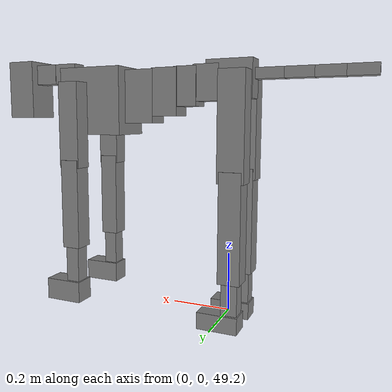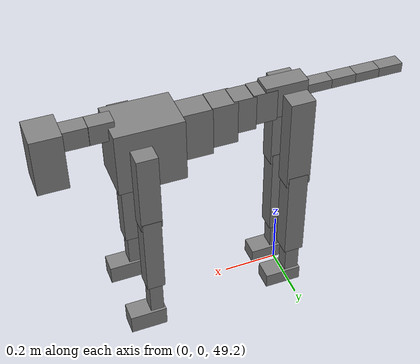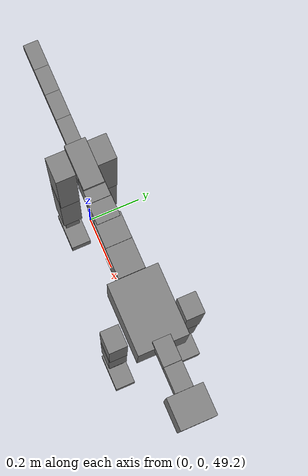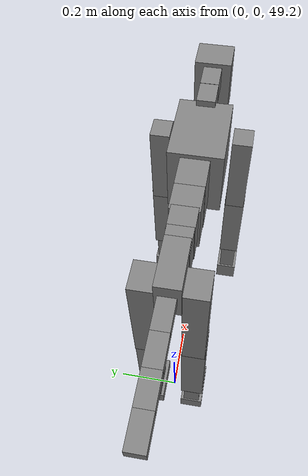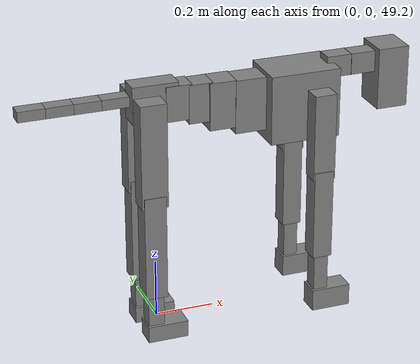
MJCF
<mujoco model="dog">

    <default>
        <joint armature="0.02" stiffness="1" damping="0.2" limited="true" />
        <geom condim="3" friction="1 0.05 0.05" margin="0.01" />
        <motor ctrllimited="true" ctrlrange="-1.0 1.0" forcelimited="true" gear="50" />
    </default>

    <compiler inertiafromgeom="true" angle="radian" />

    <option timestep="0.016" iterations="50" tolerance="1e-10" solver="Newton" jacobian="dense" cone="pyramidal" />

    <size nconmax="20000" njmax="60000" nstack="5000000" />
    <visual>
        <map force="0.1" zfar="30" />
        <rgba haze="0.15 0.25 0.35 1" />
        <quality shadowsize="2048" />
        <global offwidth="800" offheight="800" />
    </visual>

    <asset>
        <texture type="skybox" builtin="gradient" rgb1="0.3 0.5 0.7" rgb2="0 0 0" width="512" height="512" />
        <texture name="texplane" type="2d" builtin="checker" rgb1=".2 .3 .4" rgb2=".1 0.15 0.2" width="512" height="512" mark="cross" markrgb=".8 .8 .8" />
        <texture name="texgeom" type="cube" builtin="flat" mark="cross" width="127" height="1278" rgb1="0.8 0.6 0.4" rgb2="0.8 0.6 0.4" markrgb="1 1 1" random="0.01" />

        <material name="matplane" reflectance="0.3" texture="texplane" texrepeat="1 1" texuniform="true" />
        <material name="matgeom" texture="texgeom" texuniform="true" rgba="0.8 0.6 .4 1" />
    </asset>

    <worldbody>
        <geom name="floor" pos="0 0 0" size="0 0 .25" type="plane" material="matplane" condim="3" />

        <light directional="false" diffuse=".2 .2 .2" specular="0 0 0" pos="0 0 5" dir="0 0 -1" castshadow="false" />
        <light mode="targetbodycom" target="torso" directional="false" diffuse=".8 .8 .8" specular="0.3 0.3 0.3" pos="0 0 4.0" dir="0 0 -1" />

        <body name="root" pos="0 0 50">
            <freejoint name="root_1" />
            <geom type="box" pos="0 0 -0.02" size="0.0774  0.0358  0.063" density="2030" />

            <body name="spine1" pos="0.054 0 0">
                <joint name="spine1_y" axis="0 1 0" range="0 0.7" limited="true" />
                <geom type="box" pos="0.02375 0 -0.03" size="0.04375  0.0375  0.05985" density="2030" />

                <body name="spine2" pos="0.0612 0 0">
                    <joint name="spine2_y" axis="0 1 0" range="-0.15 0.15" limited="true" />
                    <geom type="box" pos="0.03555  0  -0.04" size="0.04055  0.039  0.06615" density="2030" />

                    <body name="spine3" pos="0.0730 0 0">
                        <joint name="spine3_y" axis="0 1 0" range="-0.15 0.15" limited="true" />
                        <geom type="box" pos="0.03555  0  -0.057" size="0.04555  0.0445  0.081" density="2030" />

                        <body name="spine4" pos="0.0780 0 0">
                            <joint name="spine4_y" axis="0 1 0" range="-0.15 0.15" limited="true" />
                            <geom type="box" pos="0.05265  0  -0.07" size="0.05265  0.045  0.09135" density="2030" />

                            <body name="torso" pos="0.1082 0 0">
                                <joint name="torso_y" axis="0 1 0" range="-0.15 0.15" limited="true" />
                                <geom type="box" pos="0.11925  0  -0.085" size="0.11925  0.085  0.11745" density="2030" />

                                <body name="neck1" pos="0.2160  0   0.0180">
                                    <joint name="neck1_y" axis="0 1 0" range="-1.2  -1" limited="true" />
                                    <geom type="box" pos="0.0423  0  0" size="0.0423  0.03  0.036" density="2325" />

                                    <body name="neck2" pos="0.0853  0  0">
                                        <joint name="neck2_y" axis="0 1 0" range="0.1  0" limited="true" />
                                        <geom type="box" pos="0.0423  0  0" size="0.0423  0.03  0.036" density="2325" />

                                        <body name="head" pos="0.0853  0  0">
                                            <joint name="head_y" axis="0 1 0" range="-0.3  -0.2" limited="true" />
                                            <geom type="box" pos="0.0531  0  -0.055" size="0.0531  0.06  0.1044" density="4030" />

                                        </body>
                                    </body>
                                </body>

                                <body name="front_shoulder" pos="0.156  0   -0.0480">
                                    <joint name="front_shoulder_y" axis="0 1 0" range="-1 1.5" limited="true" />
                                    <geom type="box" pos="0 0.13 -0.1210" size="0.0370  0.0316  0.1476" density="1158" />
                                    <geom type="box" pos="0 -0.13 -0.1210" size="0.0370  0.0316  0.1476" density="1158" />

                                    <body name="front_elbow" pos="0  0  -0.2419">
                                        <joint name="front_elbow_y" axis="0 1 0" range="-2 0" limited="true" />
                                        <geom type="box" pos="0 0.13 -0.1547" size="0.0327  0.0334  0.1547" density="1081" />
                                        <geom type="box" pos="0 -0.13 -0.1547" size="0.0327  0.0334  0.1547" density="1081" />

                                        <body name="front_wrist" pos="0  0  -0.3094">
                                            <joint name="front_wrist_y" axis="0 1 0" range="-0.2 0" limited="true" />
                                            <geom type="box" pos="0 0.13 -0.0692" size="0.0242  0.0269  0.0824" density="1664" />
                                            <geom type="box" pos="0 -0.13 -0.0692" size="0.0242  0.0269  0.0824" density="1664" />

                                            <body name="front_finger_end" pos="0  0  -0.1385">
                                                <joint name="front_finger_y" axis="0 1 0" range="-0.4 1" limited="true" />
                                                <geom type="box" pos="0.0364  0.13  -0.0222" size="0.0667  0.0364  0.0372" density="1515" />
                                                <geom type="box" pos="0.0364  -0.13  -0.0222" size="0.0667  0.0364  0.0372" density="1515" />

                                            </body>

                                        </body>
                                    </body>
                                </body>

                            </body>
                        </body>
                    </body>
                </body>
            </body>

            <body name="back_hip" pos="-0.03 0 -0.018">
                <joint name="back_hip_y" axis="0 1 0" range="-1.5 0.3" limited="true" />
                <geom type="box" pos="0 0.07 -0.1554" size="0.0442  0.0347  0.1782" density="1154" />
                <geom type="box" pos="0 -0.07 -0.1554" size="0.0442  0.0347  0.1782" density="1154" />

                <body name="back_knee" pos="0  0  -0.3107">
                    <joint name="back_knee_y" axis="0 1 0" range="0 2.8" limited="true" />
                    <geom type="box" pos="0 0.07 -0.1663" size="0.0369  0.0364  0.1818" density="1227" />
                    <geom type="box" pos="0 -0.07 -0.1663" size="0.0369  0.0364  0.1818" density="1227" />

                    <body name="back_ankle" pos="0  0  -0.3325">
                        <joint name="back_ankle_y" axis="0 1 0" range="-2.2 0" limited="true" />
                        <geom type="box" pos="0 0.07 -0.0681" size="0.0271  0.0271  0.0794" density="1284" />
                        <geom type="box" pos="0 -0.07 -0.0681" size="0.0271  0.0271  0.0794" density="1284" />

                        <body name="back_toe_end" pos="0  0  -0.1363">
                            <joint name="back_toe_y" axis="0 1 0" range="-0.4 1" limited="true" />
                            <geom type="box" pos="0.0375  0.07  -0.0135" size="0.0687  0.0375  0.0285" density="1515" />
                            <geom type="box" pos="0.0375  -0.07  -0.0135" size="0.0687  0.0375  0.0285" density="1515" />

                        </body>
                    </body>
                </body>
            </body>

            <body name="tail1" pos="-0.074 0 -0.006">
                <joint name="tail1_y" axis="0 1 0" range="-0.2 0.2" limited="true" />
                <geom type="box" pos="-0.0536  0  0" size="0.045  0.025  0.0175" density="1587" />

                <body name="tail2" pos="-0.09 0 0">
                    <joint name="tail2_y" axis="0 1 0" range="-0.2 0.2" limited="true" />
                    <geom type="box" pos="-0.0536  0  0" size="0.045  0.025  0.0175" density="1587" />

                    <body name="tail3" pos="-0.09 0 0">
                        <joint name="tail3_y" axis="0 1 0" range="-0.2 0.2" limited="true" />
                        <geom type="box" pos="-0.0536  0  0" size="0.045  0.025  0.0175" density="1587" />

                        <body name="tail4" pos="-0.09 0 0">
                            <joint name="tail4_y" axis="0 1 0" range="-0.2 0.2" limited="true" />
                            <geom type="box" pos="-0.0536  0  0" size="0.045  0.025  0.0175" density="1587" />

                        </body>
                    </body>
                </body>
            </body>
        </body>
    </worldbody>

    <actuator>
        <motor joint="spine1_y" forcerange="-150 150     " />
        <motor joint="spine2_y" forcerange="-150 150     " />
        <motor joint="spine3_y" forcerange="-150 150     " />
        <motor joint="spine4_y" forcerange="-150 150     " />
        <motor joint="torso_y" forcerange="-150 150     " />
        <motor joint="neck1_y" forcerange="-100 100       " />
        <motor joint="neck2_y" forcerange="-100 100       " />
        <motor joint="head_y" forcerange="-150 150       " />
        <motor joint="front_shoulder_y" forcerange="-155.10 155.52" />
        <motor joint="front_elbow_y" forcerange="-160.44 182.82" />
        <motor joint="front_wrist_y" forcerange="-108.07 106.91" />
        <motor joint="front_finger_y" forcerange="-86.12 67.86" />
        <motor joint="back_hip_y" forcerange="-325.33 336.87" />
        <motor joint="back_knee_y" forcerange="-346.63 382.10" />
        <motor joint="back_angle_y" forcerange="-174.44 159.71" />
        <motor joint="back_toe_y" forcerange="-89.54 130.28" />
        <motor joint="tail1_y" forcerange="-50 50     " />
        <motor joint="tail2_y" forcerange="-50 50     " />
        <motor joint="tail3_y" forcerange="-50 50     " />
        <motor joint="tail4_y" forcerange="-50 50     " />
    </actuator>
</mujoco>
